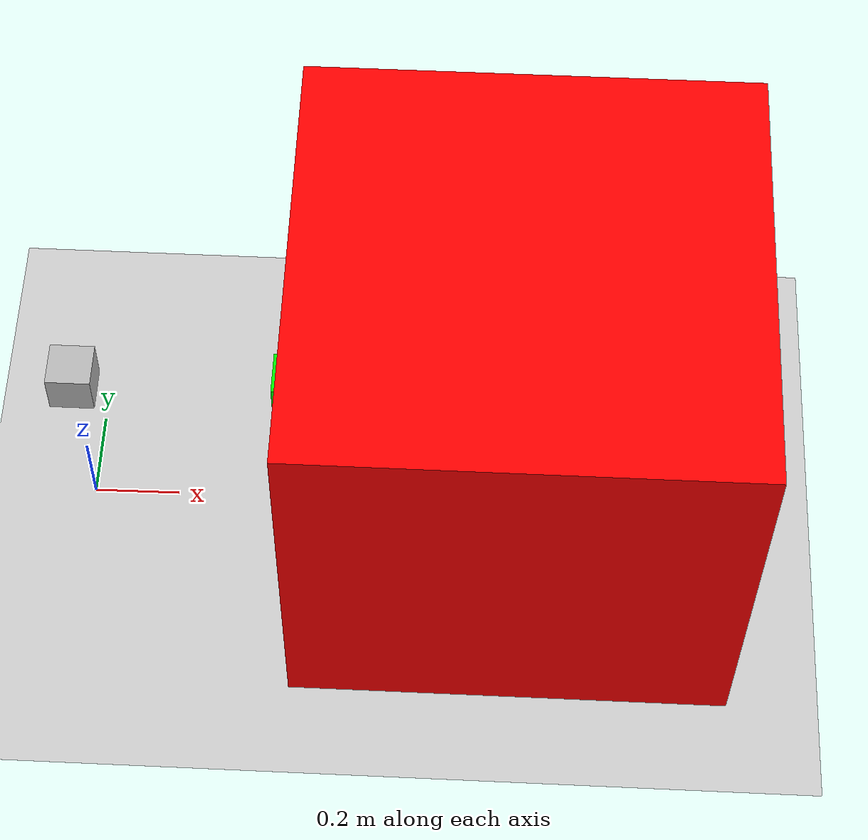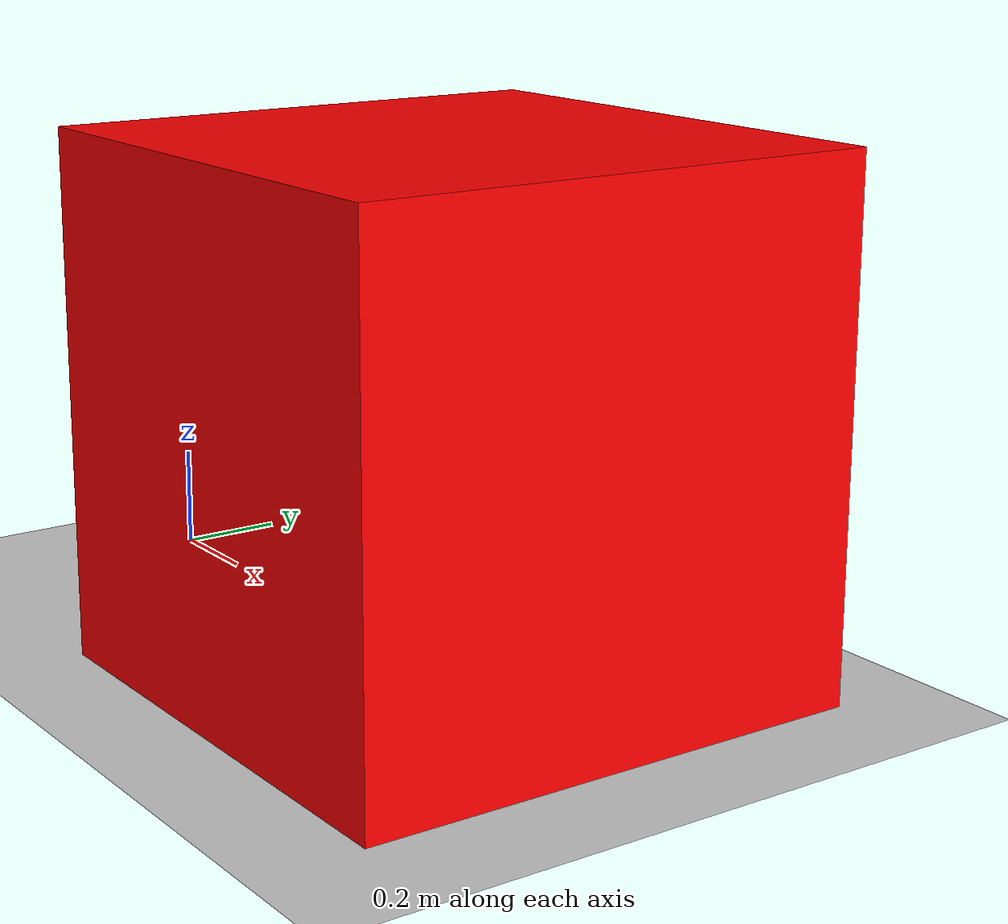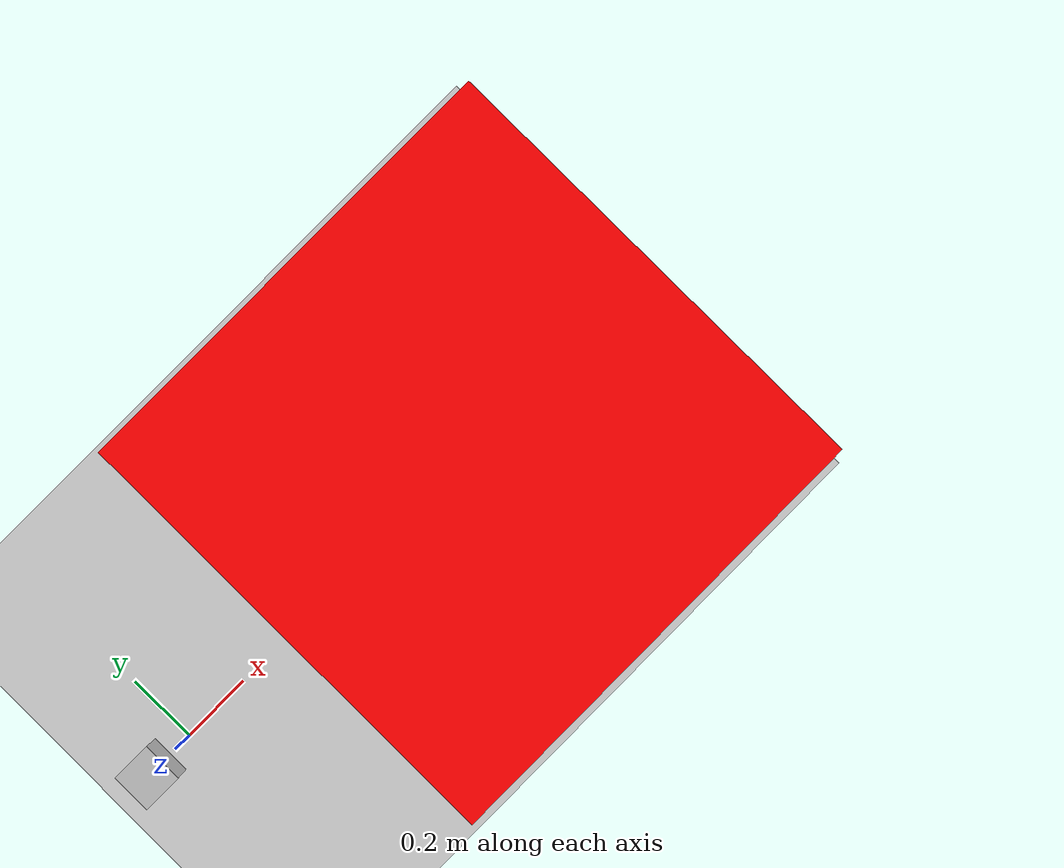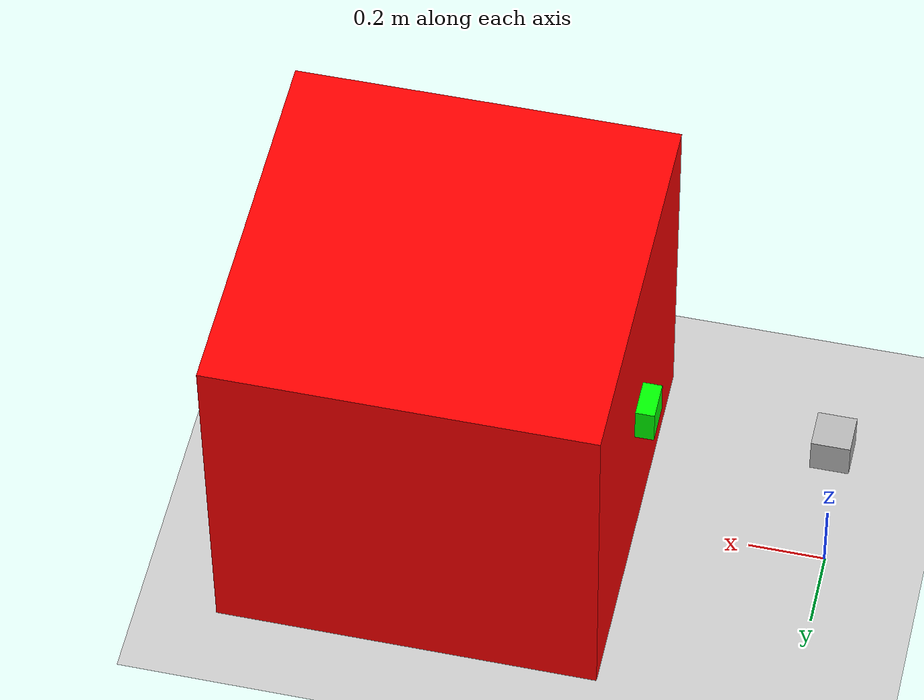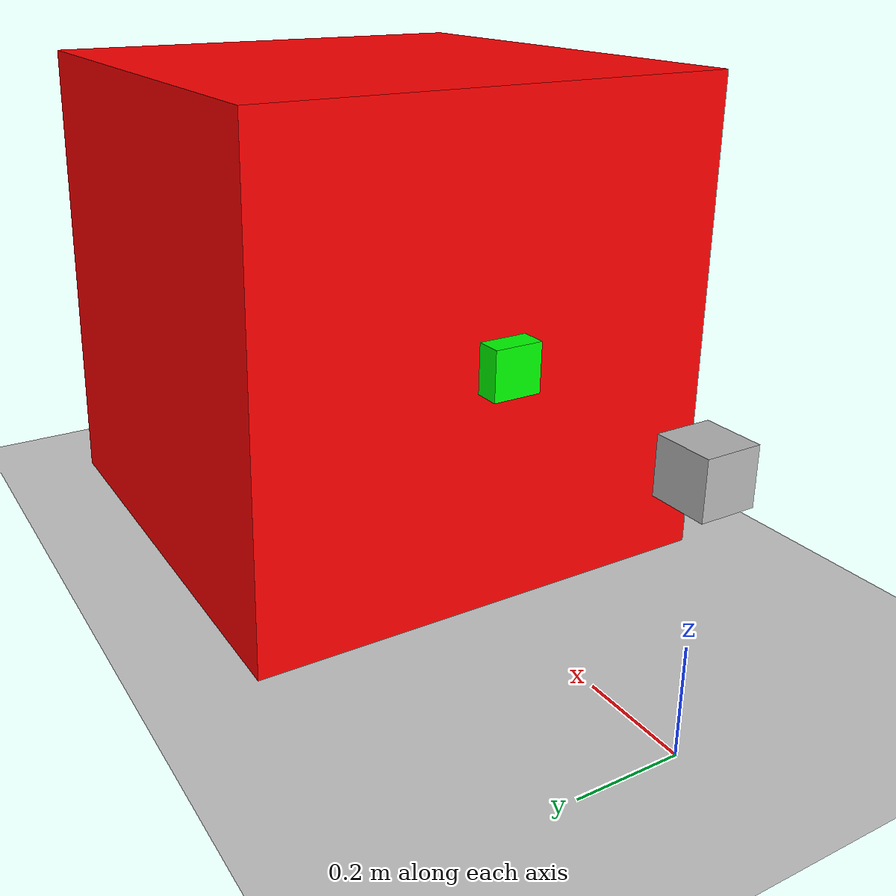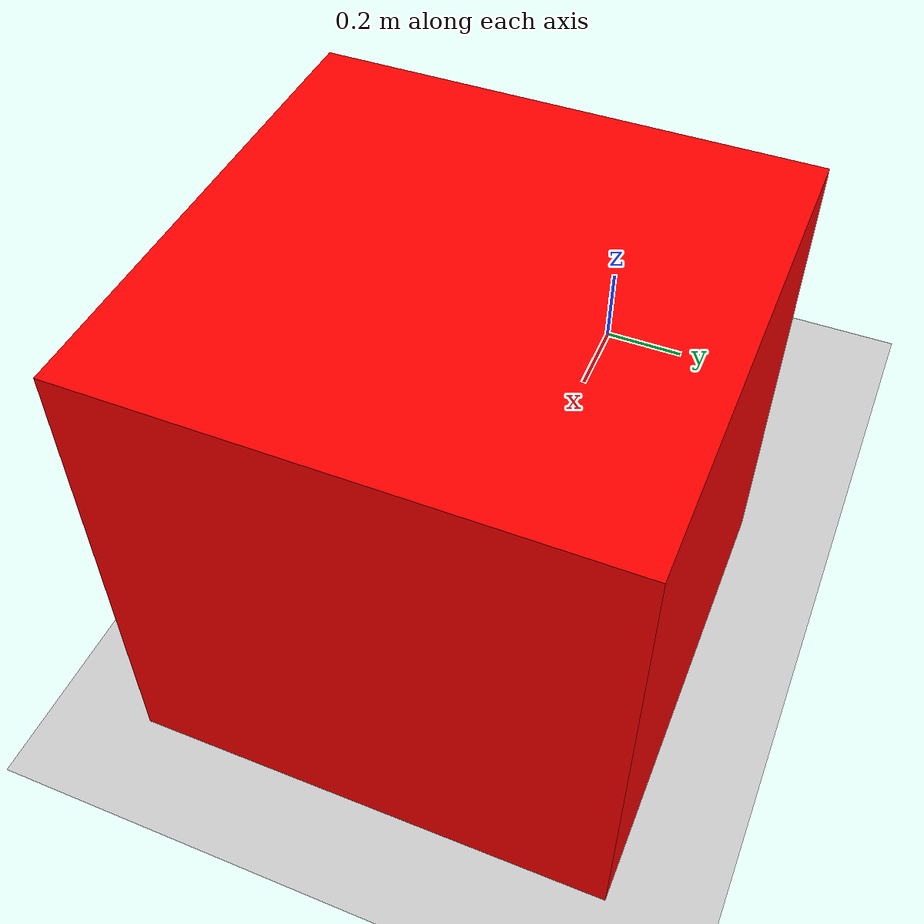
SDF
<?xml version="1.0" ?>
<!--
  Leak detector demo

  Running this demo:

    IGN_GAZEBO_SYSTEM_PLUGIN_PATH=$LD_LIBRARY_PATH ign gazebo -v 4 leak_detector.sdf

  Listen to leak detector readings:

    ign topic -e -t /leak
-->
<sdf version="1.6">
  <world name="leak_detector">
    <physics name="1ms" type="ode">
      <max_step_size>0.001</max_step_size>
      <real_time_factor>1.0</real_time_factor>
    </physics>
    <plugin
      filename="libignition-gazebo-physics-system.so"
      name="ignition::gazebo::systems::Physics">
    </plugin>
    <plugin
      filename="libignition-gazebo-logical-camera-system.so"
      name="ignition::gazebo::systems::LogicalCamera">
    </plugin>
    <plugin
      filename="libignition-gazebo-user-commands-system.so"
      name="ignition::gazebo::systems::UserCommands">
    </plugin>
    <plugin
      filename="libignition-gazebo-scene-broadcaster-system.so"
      name="ignition::gazebo::systems::SceneBroadcaster">
    </plugin>

    <gui fullscreen="0">

      <!-- 3D scene -->
      <plugin filename="GzScene3D" name="3D View">
        <ignition-gui>
          <title>3D View</title>
          <property type="bool" key="showTitleBar">false</property>
          <property type="string" key="state">docked</property>
        </ignition-gui>

        <engine>ogre2</engine>
        <scene>scene</scene>
        <ambient_light>0.4 0.4 0.4</ambient_light>
        <background_color>0.8 0.8 0.8</background_color>
        <camera_pose>-6 0 6 0 0.5 0</camera_pose>
      </plugin>

      <!-- World control -->
      <plugin filename="WorldControl" name="World control">
        <ignition-gui>
          <title>World control</title>
          <property type="bool" key="showTitleBar">false</property>
          <property type="bool" key="resizable">false</property>
          <property type="double" key="height">72</property>
          <property type="double" key="width">121</property>
          <property type="double" key="z">1</property>

          <property type="string" key="state">floating</property>
          <anchors target="3D View">
            <line own="left" target="left"/>
            <line own="bottom" target="bottom"/>
          </anchors>
        </ignition-gui>

        <play_pause>true</play_pause>
        <step>true</step>
        <start_paused>true</start_paused>
        <service>/world/leak_detector/control</service>
        <stats_topic>/world/leak_detector/stats</stats_topic>
      </plugin>

      <!-- World statistics -->
      <plugin filename="WorldStats" name="World stats">
        <ignition-gui>
          <title>World stats</title>
          <property type="bool" key="showTitleBar">false</property>
          <property type="bool" key="resizable">false</property>
          <property type="double" key="height">110</property>
          <property type="double" key="width">290</property>
          <property type="double" key="z">1</property>

          <property type="string" key="state">floating</property>
          <anchors target="3D View">
            <line own="right" target="right"/>
            <line own="bottom" target="bottom"/>
          </anchors>
        </ignition-gui>

        <sim_time>true</sim_time>
        <real_time>true</real_time>
        <real_time_factor>true</real_time_factor>
        <iterations>true</iterations>
        <topic>/world/leak_detector/stats</topic>
      </plugin>
    </gui>

    <light type="directional" name="sun">
      <cast_shadows>true</cast_shadows>
      <pose>0 0 10 0 0 0</pose>
      <diffuse>0.8 0.8 0.8 1</diffuse>
      <specular>0.2 0.2 0.2 1</specular>
      <direction>-0.5 0.1 -0.9</direction>
    </light>

    <model name="ground_plane">
      <static>true</static>
      <link name="link">
        <collision name="collision">
          <geometry>
            <box>
              <size>20 20 0.1</size>
            </box>
          </geometry>
        </collision>
        <visual name="visual">
          <geometry>
            <plane>
              <normal>0 0 1</normal>
              <size>100 100</size>
            </plane>
          </geometry>
          <material>
            <ambient>0.8 0.8 0.8 1</ambient>
            <diffuse>0.8 0.8 0.8 1</diffuse>
            <specular>0.8 0.8 0.8 1</specular>
          </material>
        </visual>
      </link>
    </model>

    <model name="box">
      <pose>1 0 0.5 0 0 0</pose>
      <link name="box_link">
        <inertial>
          <inertia>
            <ixx>1</ixx>
            <ixy>0</ixy>
            <ixz>0</ixz>
            <iyy>1</iyy>
            <iyz>0</iyz>
            <izz>1</izz>
          </inertia>
          <mass>1.0</mass>
        </inertial>
        <collision name="box_collision">
          <geometry>
            <box>
              <size>1 1 1</size>
            </box>
          </geometry>
        </collision>

        <visual name="box_visual">
          <geometry>
            <box>
              <size>1 1 1</size>
            </box>
          </geometry>
          <material>
            <ambient>1 0 0 1</ambient>
            <diffuse>1 0 0 1</diffuse>
            <specular>1 0 0 1</specular>
          </material>
        </visual>
      </link>
    </model>

    <model name="leak">
      <static>true</static>
      <pose>0.5 0 0.5 0 0 0</pose>
      <link name="leak_link">
        <collision name="collision">
          <geometry>
            <box>
              <size>0.1 0.1 0.1</size>
            </box>
          </geometry>
        </collision>

        <visual name="visual">
          <geometry>
            <box>
              <size>0.1 0.1 0.1</size>
            </box>
          </geometry>
          <material>
            <ambient>0 1 0 1</ambient>
            <diffuse>0 1 0 1</diffuse>
            <specular>0 1 0 1</specular>
          </material>
        </visual>
      </link>
    </model>

    <model name="leak_detector">
      <static>true</static>
      <pose>0 0 0.5 0 0 0.0 </pose>
      <link name="leak_detector_link">
        <pose>0.0 0.0 0.0 0 0 0</pose>
        <collision name="collision">
          <geometry>
            <box>
              <size>0.1 0.1 0.1</size>
            </box>
          </geometry>
        </collision>
        <visual name="visual">
          <geometry>
            <box>
              <size>0.1 0.1 0.1</size>
            </box>
          </geometry>
        </visual>
        <sensor name='logical_camera' type='logical_camera'>"
          <update_rate>10</update_rate>
          <logical_camera>
            <near>0.1</near>
            <far>2</far>
            <horizontal_fov>1.04719755</horizontal_fov>
            <aspect_ratio>1.778</aspect_ratio>
          </logical_camera>
          <alwaysOn>1</alwaysOn>
          <visualize>true</visualize>
          <topic>logical_camera</topic>
          <plugin
            filename="libLeakDetectorPlugin.so" name="subt::LeakDetectorPlugin">
            <min_value>0.01</min_value>
            <leak_name>leak</leak_name>
            <topic>/leak</topic>
          </plugin>
        </sensor>
      </link>
    </model>
  </world>
</sdf>
